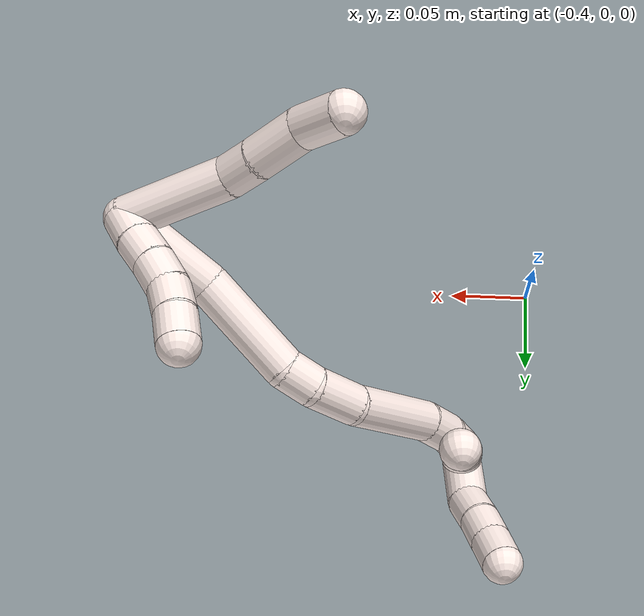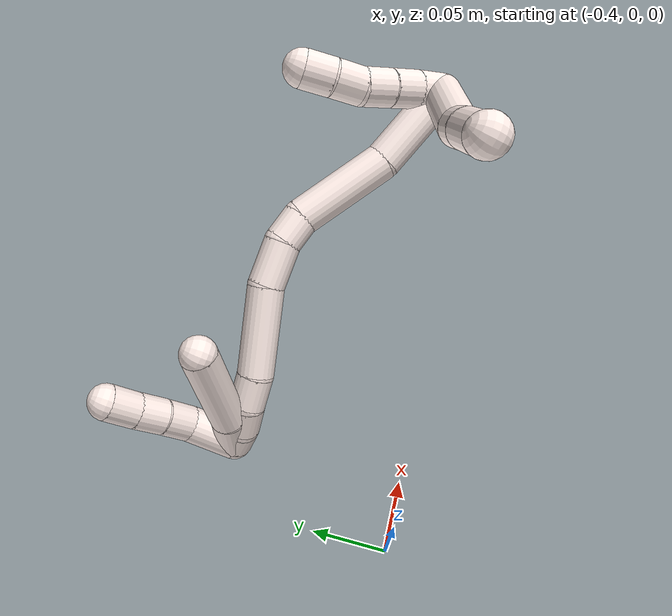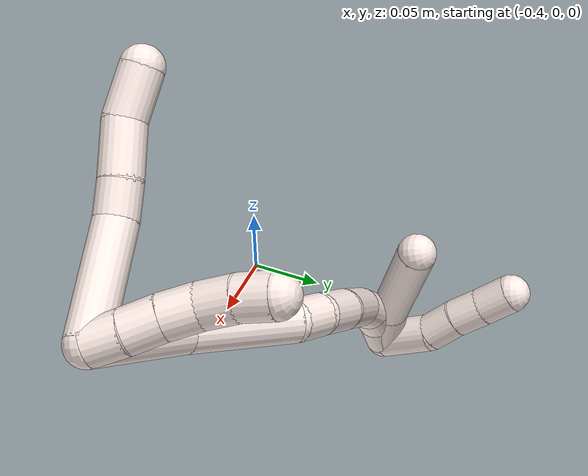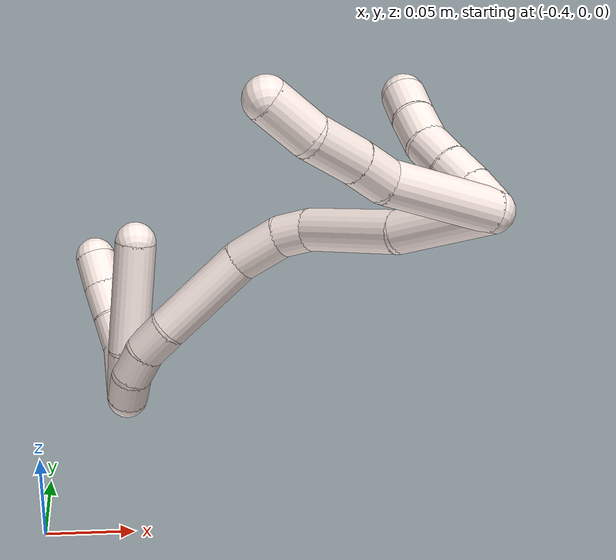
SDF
<sdf version="1.7">
 <world name="default">
  <model name="11">
   <static>0</static>
   <link name="11">
    <collision name="collision-cylinder-e_1_2_8">
     <pose>-0.003226 -0.03327 -0.000795 1.59469 -0.096636 -0.098969</pose>
     <geometry><cylinder><radius>0.0125</radius><length>0.066872</length></cylinder></geometry>
     <surface>
      <friction><ode><mu>1.16</mu><mu2>1.16</mu2><slip1>0</slip1><slip2>0</slip2></ode></friction>
      <contact><ode><kp>1e+06</kp><kd>1</kd><max_vel>0</max_vel><min_depth>0.001</min_depth></ode></contact>
     </surface>
    </collision>
    <visual name="visual-cylinder-e_1_2_8">
     <pose>-0.003226 -0.03327 -0.000795 1.59469 -0.096636 -0.098969</pose>
     <geometry><cylinder><radius>0.0125</radius><length>0.066872</length></cylinder></geometry>
     <material><ambient>1 0.933333 0.909804 1</ambient></material>
    </visual>
    <collision name="collision-cylinder-e_2_8_9">
     <pose>-0.010274 -0.076335 -0.002981 1.71186 -0.368709 -0.423213</pose>
     <geometry><cylinder><radius>0.0125</radius><length>0.021209</length></cylinder></geometry>
     <surface>
      <friction><ode><mu>1.16</mu><mu2>1.16</mu2><slip1>0</slip1><slip2>0</slip2></ode></friction>
      <contact><ode><kp>1e+06</kp><kd>1</kd><max_vel>0</max_vel><min_depth>0.001</min_depth></ode></contact>
     </surface>
    </collision>
    <visual name="visual-cylinder-e_2_8_9">
     <pose>-0.010274 -0.076335 -0.002981 1.71186 -0.368709 -0.423213</pose>
     <geometry><cylinder><radius>0.0125</radius><length>0.021209</length></cylinder></geometry>
     <material><ambient>1 0.933333 0.909804 1</ambient></material>
    </visual>
    <collision name="collision-cylinder-e_3_9_10">
     <pose>-0.019599 -0.101279 -0.005099 1.61877 -0.348029 -0.364769</pose>
     <geometry><cylinder><radius>0.0125</radius><length>0.032271</length></cylinder></geometry>
     <surface>
      <friction><ode><mu>1.16</mu><mu2>1.16</mu2><slip1>0</slip1><slip2>0</slip2></ode></friction>
      <contact><ode><kp>1e+06</kp><kd>1</kd><max_vel>0</max_vel><min_depth>0.001</min_depth></ode></contact>
     </surface>
    </collision>
    <visual name="visual-cylinder-e_3_9_10">
     <pose>-0.019599 -0.101279 -0.005099 1.61877 -0.348029 -0.364769</pose>
     <geometry><cylinder><radius>0.0125</radius><length>0.032271</length></cylinder></geometry>
     <material><ambient>1 0.933333 0.909804 1</ambient></material>
    </visual>
    <collision name="collision-cylinder-e_4_10_6">
     <pose>-0.029574 -0.129551 -0.011078 1.95148 -0.306457 -0.44863</pose>
     <geometry><cylinder><radius>0.0125</radius><length>0.029648</length></cylinder></geometry>
     <surface>
      <friction><ode><mu>1.16</mu><mu2>1.16</mu2><slip1>0</slip1><slip2>0</slip2></ode></friction>
      <contact><ode><kp>1e+06</kp><kd>1</kd><max_vel>0</max_vel><min_depth>0.001</min_depth></ode></contact>
     </surface>
    </collision>
    <visual name="visual-cylinder-e_4_10_6">
     <pose>-0.029574 -0.129551 -0.011078 1.95148 -0.306457 -0.44863</pose>
     <geometry><cylinder><radius>0.0125</radius><length>0.029648</length></cylinder></geometry>
     <material><ambient>1 0.933333 0.909804 1</ambient></material>
    </visual>
    <collision name="collision-cylinder-e_1_2_11">
     <pose>0.001965 -0.00351 -0.009155 2.77546 0.197747 0.983739</pose>
     <geometry><cylinder><radius>0.0125</radius><length>0.02</length></cylinder></geometry>
     <surface>
      <friction><ode><mu>1.16</mu><mu2>1.16</mu2><slip1>0</slip1><slip2>0</slip2></ode></friction>
      <contact><ode><kp>1e+06</kp><kd>1</kd><max_vel>0</max_vel><min_depth>0.001</min_depth></ode></contact>
     </surface>
    </collision>
    <visual name="visual-cylinder-e_1_2_11">
     <pose>0.001965 -0.00351 -0.009155 2.77546 0.197747 0.983739</pose>
     <geometry><cylinder><radius>0.0125</radius><length>0.02</length></cylinder></geometry>
     <material><ambient>1 0.933333 0.909804 1</ambient></material>
    </visual>
    <collision name="collision-cylinder-e_2_11_12">
     <pose>0.006089 -0.011289 -0.027092 2.68921 0.217683 0.886633</pose>
     <geometry><cylinder><radius>0.0125</radius><length>0.02</length></cylinder></geometry>
     <surface>
      <friction><ode><mu>1.16</mu><mu2>1.16</mu2><slip1>0</slip1><slip2>0</slip2></ode></friction>
      <contact><ode><kp>1e+06</kp><kd>1</kd><max_vel>0</max_vel><min_depth>0.001</min_depth></ode></contact>
     </surface>
    </collision>
    <visual name="visual-cylinder-e_2_11_12">
     <pose>0.006089 -0.011289 -0.027092 2.68921 0.217683 0.886633</pose>
     <geometry><cylinder><radius>0.0125</radius><length>0.02</length></cylinder></geometry>
     <material><ambient>1 0.933333 0.909804 1</ambient></material>
    </visual>
    <collision name="collision-cylinder-e_3_12_13">
     <pose>0.010762 -0.019182 -0.044848 2.75767 0.254082 1.16283</pose>
     <geometry><cylinder><radius>0.0125</radius><length>0.02</length></cylinder></geometry>
     <surface>
      <friction><ode><mu>1.16</mu><mu2>1.16</mu2><slip1>0</slip1><slip2>0</slip2></ode></friction>
      <contact><ode><kp>1e+06</kp><kd>1</kd><max_vel>0</max_vel><min_depth>0.001</min_depth></ode></contact>
     </surface>
    </collision>
    <visual name="visual-cylinder-e_3_12_13">
     <pose>0.010762 -0.019182 -0.044848 2.75767 0.254082 1.16283</pose>
     <geometry><cylinder><radius>0.0125</radius><length>0.02</length></cylinder></geometry>
     <material><ambient>1 0.933333 0.909804 1</ambient></material>
    </visual>
    <collision name="collision-cylinder-e_4_13_14">
     <pose>0.014318 -0.024528 -0.063618 2.96773 0.104459 1.08062</pose>
     <geometry><cylinder><radius>0.0125</radius><length>0.02</length></cylinder></geometry>
     <surface>
      <friction><ode><mu>1.16</mu><mu2>1.16</mu2><slip1>0</slip1><slip2>0</slip2></ode></friction>
      <contact><ode><kp>1e+06</kp><kd>1</kd><max_vel>0</max_vel><min_depth>0.001</min_depth></ode></contact>
     </surface>
    </collision>
    <visual name="visual-cylinder-e_4_13_14">
     <pose>0.014318 -0.024528 -0.063618 2.96773 0.104459 1.08062</pose>
     <geometry><cylinder><radius>0.0125</radius><length>0.02</length></cylinder></geometry>
     <material><ambient>1 0.933333 0.909804 1</ambient></material>
    </visual>
    <collision name="collision-cylinder-e_5_14_5">
     <pose>0.017029 -0.026765 -0.08326 3.08913 0.167603 2.53604</pose>
     <geometry><cylinder><radius>0.0125</radius><length>0.02</length></cylinder></geometry>
     <surface>
      <friction><ode><mu>1.16</mu><mu2>1.16</mu2><slip1>0</slip1><slip2>0</slip2></ode></friction>
      <contact><ode><kp>1e+06</kp><kd>1</kd><max_vel>0</max_vel><min_depth>0.001</min_depth></ode></contact>
     </surface>
    </collision>
    <visual name="visual-cylinder-e_5_14_5">
     <pose>0.017029 -0.026765 -0.08326 3.08913 0.167603 2.53604</pose>
     <geometry><cylinder><radius>0.0125</radius><length>0.02</length></cylinder></geometry>
     <material><ambient>1 0.933333 0.909804 1</ambient></material>
    </visual>
    <collision name="collision-cylinder-e_1_2_15">
     <pose>0.024559 -0.014756 -0.00892 2.1145 0.958676 1.48917</pose>
     <geometry><cylinder><radius>0.0125</radius><length>0.060015</length></cylinder></geometry>
     <surface>
      <friction><ode><mu>1.16</mu><mu2>1.16</mu2><slip1>0</slip1><slip2>0</slip2></ode></friction>
      <contact><ode><kp>1e+06</kp><kd>1</kd><max_vel>0</max_vel><min_depth>0.001</min_depth></ode></contact>
     </surface>
    </collision>
    <visual name="visual-cylinder-e_1_2_15">
     <pose>0.024559 -0.014756 -0.00892 2.1145 0.958676 1.48917</pose>
     <geometry><cylinder><radius>0.0125</radius><length>0.060015</length></cylinder></geometry>
     <material><ambient>1 0.933333 0.909804 1</ambient></material>
    </visual>
    <collision name="collision-cylinder-e_2_15_16">
     <pose>0.073351 -0.043028 -0.034893 2.47141 0.839092 1.81584</pose>
     <geometry><cylinder><radius>0.0125</radius><length>0.065139</length></cylinder></geometry>
     <surface>
      <friction><ode><mu>1.16</mu><mu2>1.16</mu2><slip1>0</slip1><slip2>0</slip2></ode></friction>
      <contact><ode><kp>1e+06</kp><kd>1</kd><max_vel>0</max_vel><min_depth>0.001</min_depth></ode></contact>
     </surface>
    </collision>
    <visual name="visual-cylinder-e_2_15_16">
     <pose>0.073351 -0.043028 -0.034893 2.47141 0.839092 1.81584</pose>
     <geometry><cylinder><radius>0.0125</radius><length>0.065139</length></cylinder></geometry>
     <material><ambient>1 0.933333 0.909804 1</ambient></material>
    </visual>
    <collision name="collision-cylinder-e_3_16_17">
     <pose>0.1056 -0.062317 -0.054446 1.97928 0.905531 1.27497</pose>
     <geometry><cylinder><radius>0.0125</radius><length>0.020379</length></cylinder></geometry>
     <surface>
      <friction><ode><mu>1.16</mu><mu2>1.16</mu2><slip1>0</slip1><slip2>0</slip2></ode></friction>
      <contact><ode><kp>1e+06</kp><kd>1</kd><max_vel>0</max_vel><min_depth>0.001</min_depth></ode></contact>
     </surface>
    </collision>
    <visual name="visual-cylinder-e_3_16_17">
     <pose>0.1056 -0.062317 -0.054446 1.97928 0.905531 1.27497</pose>
     <geometry><cylinder><radius>0.0125</radius><length>0.020379</length></cylinder></geometry>
     <material><ambient>1 0.933333 0.909804 1</ambient></material>
    </visual>
    <collision name="collision-cylinder-e_4_17_18">
     <pose>0.12651 -0.076178 -0.056141 1.47181 1.00828 0.926677</pose>
     <geometry><cylinder><radius>0.0125</radius><length>0.030483</length></cylinder></geometry>
     <surface>
      <friction><ode><mu>1.16</mu><mu2>1.16</mu2><slip1>0</slip1><slip2>0</slip2></ode></friction>
      <contact><ode><kp>1e+06</kp><kd>1</kd><max_vel>0</max_vel><min_depth>0.001</min_depth></ode></contact>
     </surface>
    </collision>
    <visual name="visual-cylinder-e_4_17_18">
     <pose>0.12651 -0.076178 -0.056141 1.47181 1.00828 0.926677</pose>
     <geometry><cylinder><radius>0.0125</radius><length>0.030483</length></cylinder></geometry>
     <material><ambient>1 0.933333 0.909804 1</ambient></material>
    </visual>
    <collision name="collision-cylinder-e_5_18_19">
     <pose>0.164484 -0.098709 -0.046126 1.00303 0.971572 0.563557</pose>
     <geometry><cylinder><radius>0.0125</radius><length>0.060745</length></cylinder></geometry>
     <surface>
      <friction><ode><mu>1.16</mu><mu2>1.16</mu2><slip1>0</slip1><slip2>0</slip2></ode></friction>
      <contact><ode><kp>1e+06</kp><kd>1</kd><max_vel>0</max_vel><min_depth>0.001</min_depth></ode></contact>
     </surface>
    </collision>
    <visual name="visual-cylinder-e_5_18_19">
     <pose>0.164484 -0.098709 -0.046126 1.00303 0.971572 0.563557</pose>
     <geometry><cylinder><radius>0.0125</radius><length>0.060745</length></cylinder></geometry>
     <material><ambient>1 0.933333 0.909804 1</ambient></material>
    </visual>
    <collision name="collision-cylinder-e_6_19_20">
     <pose>0.199943 -0.117229 -0.034861 1.10426 1.15641 0.764515</pose>
     <geometry><cylinder><radius>0.0125</radius><length>0.022676</length></cylinder></geometry>
     <surface>
      <friction><ode><mu>1.16</mu><mu2>1.16</mu2><slip1>0</slip1><slip2>0</slip2></ode></friction>
      <contact><ode><kp>1e+06</kp><kd>1</kd><max_vel>0</max_vel><min_depth>0.001</min_depth></ode></contact>
     </surface>
    </collision>
    <visual name="visual-cylinder-e_6_19_20">
     <pose>0.199943 -0.117229 -0.034861 1.10426 1.15641 0.764515</pose>
     <geometry><cylinder><radius>0.0125</radius><length>0.022676</length></cylinder></geometry>
     <material><ambient>1 0.933333 0.909804 1</ambient></material>
    </visual>
    <collision name="collision-cylinder-e_7_20_21">
     <pose>0.22015 -0.122478 -0.030158 0.416408 1.28409 0.31335</pose>
     <geometry><cylinder><radius>0.0125</radius><length>0.020495</length></cylinder></geometry>
     <surface>
      <friction><ode><mu>1.16</mu><mu2>1.16</mu2><slip1>0</slip1><slip2>0</slip2></ode></friction>
      <contact><ode><kp>1e+06</kp><kd>1</kd><max_vel>0</max_vel><min_depth>0.001</min_depth></ode></contact>
     </surface>
    </collision>
    <visual name="visual-cylinder-e_7_20_21">
     <pose>0.22015 -0.122478 -0.030158 0.416408 1.28409 0.31335</pose>
     <geometry><cylinder><radius>0.0125</radius><length>0.020495</length></cylinder></geometry>
     <material><ambient>1 0.933333 0.909804 1</ambient></material>
    </visual>
    <collision name="collision-cylinder-e_8_21_1">
     <pose>0.239728 -0.121848 -0.025954 -0.859169 1.33139 -0.690665</pose>
     <geometry><cylinder><radius>0.0125</radius><length>0.020069</length></cylinder></geometry>
     <surface>
      <friction><ode><mu>1.16</mu><mu2>1.16</mu2><slip1>0</slip1><slip2>0</slip2></ode></friction>
      <contact><ode><kp>1e+06</kp><kd>1</kd><max_vel>0</max_vel><min_depth>0.001</min_depth></ode></contact>
     </surface>
    </collision>
    <visual name="visual-cylinder-e_8_21_1">
     <pose>0.239728 -0.121848 -0.025954 -0.859169 1.33139 -0.690665</pose>
     <geometry><cylinder><radius>0.0125</radius><length>0.020069</length></cylinder></geometry>
     <material><ambient>1 0.933333 0.909804 1</ambient></material>
    </visual>
    <collision name="collision-cylinder-e_1_1_22">
     <pose>0.248471 -0.120446 -0.042287 3.11925 -0.056084 -2.3834</pose>
     <geometry><cylinder><radius>0.0125</radius><length>0.03584</length></cylinder></geometry>
     <surface>
      <friction><ode><mu>1.16</mu><mu2>1.16</mu2><slip1>0</slip1><slip2>0</slip2></ode></friction>
      <contact><ode><kp>1e+06</kp><kd>1</kd><max_vel>0</max_vel><min_depth>0.001</min_depth></ode></contact>
     </surface>
    </collision>
    <visual name="visual-cylinder-e_1_1_22">
     <pose>0.248471 -0.120446 -0.042287 3.11925 -0.056084 -2.3834</pose>
     <geometry><cylinder><radius>0.0125</radius><length>0.03584</length></cylinder></geometry>
     <material><ambient>1 0.933333 0.909804 1</ambient></material>
    </visual>
    <collision name="collision-cylinder-e_2_22_23">
     <pose>0.245085 -0.124314 -0.070301 2.81168 -0.218948 -1.16711</pose>
     <geometry><cylinder><radius>0.0125</radius><length>0.021931</length></cylinder></geometry>
     <surface>
      <friction><ode><mu>1.16</mu><mu2>1.16</mu2><slip1>0</slip1><slip2>0</slip2></ode></friction>
      <contact><ode><kp>1e+06</kp><kd>1</kd><max_vel>0</max_vel><min_depth>0.001</min_depth></ode></contact>
     </surface>
    </collision>
    <visual name="visual-cylinder-e_2_22_23">
     <pose>0.245085 -0.124314 -0.070301 2.81168 -0.218948 -1.16711</pose>
     <geometry><cylinder><radius>0.0125</radius><length>0.021931</length></cylinder></geometry>
     <material><ambient>1 0.933333 0.909804 1</ambient></material>
    </visual>
    <collision name="collision-cylinder-e_3_23_24">
     <pose>0.241463 -0.130569 -0.090249 2.86503 -0.120848 -0.82011</pose>
     <geometry><cylinder><radius>0.0125</radius><length>0.020569</length></cylinder></geometry>
     <surface>
      <friction><ode><mu>1.16</mu><mu2>1.16</mu2><slip1>0</slip1><slip2>0</slip2></ode></friction>
      <contact><ode><kp>1e+06</kp><kd>1</kd><max_vel>0</max_vel><min_depth>0.001</min_depth></ode></contact>
     </surface>
    </collision>
    <visual name="visual-cylinder-e_3_23_24">
     <pose>0.241463 -0.130569 -0.090249 2.86503 -0.120848 -0.82011</pose>
     <geometry><cylinder><radius>0.0125</radius><length>0.020569</length></cylinder></geometry>
     <material><ambient>1 0.933333 0.909804 1</ambient></material>
    </visual>
    <collision name="collision-cylinder-e_4_24_4">
     <pose>0.238317 -0.136143 -0.110361 2.87712 -0.176982 -1.17651</pose>
     <geometry><cylinder><radius>0.0125</radius><length>0.02166</length></cylinder></geometry>
     <surface>
      <friction><ode><mu>1.16</mu><mu2>1.16</mu2><slip1>0</slip1><slip2>0</slip2></ode></friction>
      <contact><ode><kp>1e+06</kp><kd>1</kd><max_vel>0</max_vel><min_depth>0.001</min_depth></ode></contact>
     </surface>
    </collision>
    <visual name="visual-cylinder-e_4_24_4">
     <pose>0.238317 -0.136143 -0.110361 2.87712 -0.176982 -1.17651</pose>
     <geometry><cylinder><radius>0.0125</radius><length>0.02166</length></cylinder></geometry>
     <material><ambient>1 0.933333 0.909804 1</ambient></material>
    </visual>
    <collision name="collision-cylinder-e_1_1_25">
     <pose>0.236074 -0.123548 -0.032344 2.72643 -0.995971 -2.40243</pose>
     <geometry><cylinder><radius>0.0125</radius><length>0.031937</length></cylinder></geometry>
     <surface>
      <friction><ode><mu>1.16</mu><mu2>1.16</mu2><slip1>0</slip1><slip2>0</slip2></ode></friction>
      <contact><ode><kp>1e+06</kp><kd>1</kd><max_vel>0</max_vel><min_depth>0.001</min_depth></ode></contact>
     </surface>
    </collision>
    <visual name="visual-cylinder-e_1_1_25">
     <pose>0.236074 -0.123548 -0.032344 2.72643 -0.995971 -2.40243</pose>
     <geometry><cylinder><radius>0.0125</radius><length>0.031937</length></cylinder></geometry>
     <material><ambient>1 0.933333 0.909804 1</ambient></material>
    </visual>
    <collision name="collision-cylinder-e_2_25_3">
     <pose>0.196621 -0.131942 -0.061632 2.91627 -0.871813 -2.66502</pose>
     <geometry><cylinder><radius>0.0125</radius><length>0.068063</length></cylinder></geometry>
     <surface>
      <friction><ode><mu>1.16</mu><mu2>1.16</mu2><slip1>0</slip1><slip2>0</slip2></ode></friction>
      <contact><ode><kp>1e+06</kp><kd>1</kd><max_vel>0</max_vel><min_depth>0.001</min_depth></ode></contact>
     </surface>
    </collision>
    <visual name="visual-cylinder-e_2_25_3">
     <pose>0.196621 -0.131942 -0.061632 2.91627 -0.871813 -2.66502</pose>
     <geometry><cylinder><radius>0.0125</radius><length>0.068063</length></cylinder></geometry>
     <material><ambient>1 0.933333 0.909804 1</ambient></material>
    </visual>
    <collision name="collision-sphere-3">
     <pose>0.170569 -0.136834 -0.082976 0 -0 0</pose>
     <geometry><sphere><radius>0.0125</radius></sphere></geometry>
     <surface>
      <friction><ode><mu>1.16</mu><mu2>1.16</mu2><slip1>0</slip1><slip2>0</slip2></ode></friction>
      <contact><ode><kp>1e+06</kp><kd>1</kd><max_vel>0</max_vel><min_depth>0.001</min_depth></ode></contact>
     </surface>
    </collision>
    <visual name="visual-sphere-3">
     <pose>0.170569 -0.136834 -0.082976 0 -0 0</pose>
     <geometry><sphere><radius>0.0125</radius></sphere></geometry>
     <material><ambient>1 0.933333 0.909804 1</ambient></material>
    </visual>
    <collision name="collision-sphere-25">
     <pose>0.222672 -0.12705 -0.040288 0 -0 0</pose>
     <geometry><sphere><radius>0.0125</radius></sphere></geometry>
     <surface>
      <friction><ode><mu>1.16</mu><mu2>1.16</mu2><slip1>0</slip1><slip2>0</slip2></ode></friction>
      <contact><ode><kp>1e+06</kp><kd>1</kd><max_vel>0</max_vel><min_depth>0.001</min_depth></ode></contact>
     </surface>
    </collision>
    <visual name="visual-sphere-25">
     <pose>0.222672 -0.12705 -0.040288 0 -0 0</pose>
     <geometry><sphere><radius>0.0125</radius></sphere></geometry>
     <material><ambient>1 0.933333 0.909804 1</ambient></material>
    </visual>
    <collision name="collision-sphere-4">
     <pose>0.23641 -0.13893 -0.120651 0 -0 0</pose>
     <geometry><sphere><radius>0.0125</radius></sphere></geometry>
     <surface>
      <friction><ode><mu>1.16</mu><mu2>1.16</mu2><slip1>0</slip1><slip2>0</slip2></ode></friction>
      <contact><ode><kp>1e+06</kp><kd>1</kd><max_vel>0</max_vel><min_depth>0.001</min_depth></ode></contact>
     </surface>
    </collision>
    <visual name="visual-sphere-4">
     <pose>0.23641 -0.13893 -0.120651 0 -0 0</pose>
     <geometry><sphere><radius>0.0125</radius></sphere></geometry>
     <material><ambient>1 0.933333 0.909804 1</ambient></material>
    </visual>
    <collision name="collision-sphere-24">
     <pose>0.240224 -0.133357 -0.10007 0 -0 0</pose>
     <geometry><sphere><radius>0.0125</radius></sphere></geometry>
     <surface>
      <friction><ode><mu>1.16</mu><mu2>1.16</mu2><slip1>0</slip1><slip2>0</slip2></ode></friction>
      <contact><ode><kp>1e+06</kp><kd>1</kd><max_vel>0</max_vel><min_depth>0.001</min_depth></ode></contact>
     </surface>
    </collision>
    <visual name="visual-sphere-24">
     <pose>0.240224 -0.133357 -0.10007 0 -0 0</pose>
     <geometry><sphere><radius>0.0125</radius></sphere></geometry>
     <material><ambient>1 0.933333 0.909804 1</ambient></material>
    </visual>
    <collision name="collision-sphere-23">
     <pose>0.242703 -0.127781 -0.080427 0 -0 0</pose>
     <geometry><sphere><radius>0.0125</radius></sphere></geometry>
     <surface>
      <friction><ode><mu>1.16</mu><mu2>1.16</mu2><slip1>0</slip1><slip2>0</slip2></ode></friction>
      <contact><ode><kp>1e+06</kp><kd>1</kd><max_vel>0</max_vel><min_depth>0.001</min_depth></ode></contact>
     </surface>
    </collision>
    <visual name="visual-sphere-23">
     <pose>0.242703 -0.127781 -0.080427 0 -0 0</pose>
     <geometry><sphere><radius>0.0125</radius></sphere></geometry>
     <material><ambient>1 0.933333 0.909804 1</ambient></material>
    </visual>
    <collision name="collision-sphere-22">
     <pose>0.247467 -0.120846 -0.060174 0 -0 0</pose>
     <geometry><sphere><radius>0.0125</radius></sphere></geometry>
     <surface>
      <friction><ode><mu>1.16</mu><mu2>1.16</mu2><slip1>0</slip1><slip2>0</slip2></ode></friction>
      <contact><ode><kp>1e+06</kp><kd>1</kd><max_vel>0</max_vel><min_depth>0.001</min_depth></ode></contact>
     </surface>
    </collision>
    <visual name="visual-sphere-22">
     <pose>0.247467 -0.120846 -0.060174 0 -0 0</pose>
     <geometry><sphere><radius>0.0125</radius></sphere></geometry>
     <material><ambient>1 0.933333 0.909804 1</ambient></material>
    </visual>
    <collision name="collision-sphere-1">
     <pose>0.249476 -0.120046 -0.0244 0 -0 0</pose>
     <geometry><sphere><radius>0.0125</radius></sphere></geometry>
     <surface>
      <friction><ode><mu>1.16</mu><mu2>1.16</mu2><slip1>0</slip1><slip2>0</slip2></ode></friction>
      <contact><ode><kp>1e+06</kp><kd>1</kd><max_vel>0</max_vel><min_depth>0.001</min_depth></ode></contact>
     </surface>
    </collision>
    <visual name="visual-sphere-1">
     <pose>0.249476 -0.120046 -0.0244 0 -0 0</pose>
     <geometry><sphere><radius>0.0125</radius></sphere></geometry>
     <material><ambient>1 0.933333 0.909804 1</ambient></material>
    </visual>
    <collision name="collision-sphere-21">
     <pose>0.229979 -0.12365 -0.027508 0 -0 0</pose>
     <geometry><sphere><radius>0.0125</radius></sphere></geometry>
     <surface>
      <friction><ode><mu>1.16</mu><mu2>1.16</mu2><slip1>0</slip1><slip2>0</slip2></ode></friction>
      <contact><ode><kp>1e+06</kp><kd>1</kd><max_vel>0</max_vel><min_depth>0.001</min_depth></ode></contact>
     </surface>
    </collision>
    <visual name="visual-sphere-21">
     <pose>0.229979 -0.12365 -0.027508 0 -0 0</pose>
     <geometry><sphere><radius>0.0125</radius></sphere></geometry>
     <material><ambient>1 0.933333 0.909804 1</ambient></material>
    </visual>
    <collision name="collision-sphere-11">
     <pose>0.003929 -0.007021 -0.01831 0 -0 0</pose>
     <geometry><sphere><radius>0.0125</radius></sphere></geometry>
     <surface>
      <friction><ode><mu>1.16</mu><mu2>1.16</mu2><slip1>0</slip1><slip2>0</slip2></ode></friction>
      <contact><ode><kp>1e+06</kp><kd>1</kd><max_vel>0</max_vel><min_depth>0.001</min_depth></ode></contact>
     </surface>
    </collision>
    <visual name="visual-sphere-11">
     <pose>0.003929 -0.007021 -0.01831 0 -0 0</pose>
     <geometry><sphere><radius>0.0125</radius></sphere></geometry>
     <material><ambient>1 0.933333 0.909804 1</ambient></material>
    </visual>
    <collision name="collision-sphere-6">
     <pose>-0.034046 -0.142673 -0.016329 0 -0 0</pose>
     <geometry><sphere><radius>0.0125</radius></sphere></geometry>
     <surface>
      <friction><ode><mu>1.16</mu><mu2>1.16</mu2><slip1>0</slip1><slip2>0</slip2></ode></friction>
      <contact><ode><kp>1e+06</kp><kd>1</kd><max_vel>0</max_vel><min_depth>0.001</min_depth></ode></contact>
     </surface>
    </collision>
    <visual name="visual-sphere-6">
     <pose>-0.034046 -0.142673 -0.016329 0 -0 0</pose>
     <geometry><sphere><radius>0.0125</radius></sphere></geometry>
     <material><ambient>1 0.933333 0.909804 1</ambient></material>
    </visual>
    <collision name="collision-sphere-10">
     <pose>-0.025102 -0.116429 -0.005826 0 -0 0</pose>
     <geometry><sphere><radius>0.0125</radius></sphere></geometry>
     <surface>
      <friction><ode><mu>1.16</mu><mu2>1.16</mu2><slip1>0</slip1><slip2>0</slip2></ode></friction>
      <contact><ode><kp>1e+06</kp><kd>1</kd><max_vel>0</max_vel><min_depth>0.001</min_depth></ode></contact>
     </surface>
    </collision>
    <visual name="visual-sphere-10">
     <pose>-0.025102 -0.116429 -0.005826 0 -0 0</pose>
     <geometry><sphere><radius>0.0125</radius></sphere></geometry>
     <material><ambient>1 0.933333 0.909804 1</ambient></material>
    </visual>
    <collision name="collision-sphere-9">
     <pose>-0.014096 -0.086128 -0.004372 0 -0 0</pose>
     <geometry><sphere><radius>0.0125</radius></sphere></geometry>
     <surface>
      <friction><ode><mu>1.16</mu><mu2>1.16</mu2><slip1>0</slip1><slip2>0</slip2></ode></friction>
      <contact><ode><kp>1e+06</kp><kd>1</kd><max_vel>0</max_vel><min_depth>0.001</min_depth></ode></contact>
     </surface>
    </collision>
    <visual name="visual-sphere-9">
     <pose>-0.014096 -0.086128 -0.004372 0 -0 0</pose>
     <geometry><sphere><radius>0.0125</radius></sphere></geometry>
     <material><ambient>1 0.933333 0.909804 1</ambient></material>
    </visual>
    <collision name="collision-sphere-2">
     <geometry><sphere><radius>0.0125</radius></sphere></geometry>
     <surface>
      <friction><ode><mu>1.16</mu><mu2>1.16</mu2><slip1>0</slip1><slip2>0</slip2></ode></friction>
      <contact><ode><kp>1e+06</kp><kd>1</kd><max_vel>0</max_vel><min_depth>0.001</min_depth></ode></contact>
     </surface>
    </collision>
    <visual name="visual-sphere-2">
     <geometry><sphere><radius>0.0125</radius></sphere></geometry>
     <material><ambient>1 0.933333 0.909804 1</ambient></material>
    </visual>
    <collision name="collision-sphere-19">
     <pose>0.189565 -0.113152 -0.036915 0 -0 0</pose>
     <geometry><sphere><radius>0.0125</radius></sphere></geometry>
     <surface>
      <friction><ode><mu>1.16</mu><mu2>1.16</mu2><slip1>0</slip1><slip2>0</slip2></ode></friction>
      <contact><ode><kp>1e+06</kp><kd>1</kd><max_vel>0</max_vel><min_depth>0.001</min_depth></ode></contact>
     </surface>
    </collision>
    <visual name="visual-sphere-19">
     <pose>0.189565 -0.113152 -0.036915 0 -0 0</pose>
     <geometry><sphere><radius>0.0125</radius></sphere></geometry>
     <material><ambient>1 0.933333 0.909804 1</ambient></material>
    </visual>
    <collision name="collision-sphere-8">
     <pose>-0.006452 -0.066541 -0.00159 0 -0 0</pose>
     <geometry><sphere><radius>0.0125</radius></sphere></geometry>
     <surface>
      <friction><ode><mu>1.16</mu><mu2>1.16</mu2><slip1>0</slip1><slip2>0</slip2></ode></friction>
      <contact><ode><kp>1e+06</kp><kd>1</kd><max_vel>0</max_vel><min_depth>0.001</min_depth></ode></contact>
     </surface>
    </collision>
    <visual name="visual-sphere-8">
     <pose>-0.006452 -0.066541 -0.00159 0 -0 0</pose>
     <geometry><sphere><radius>0.0125</radius></sphere></geometry>
     <material><ambient>1 0.933333 0.909804 1</ambient></material>
    </visual>
    <collision name="collision-sphere-12">
     <pose>0.008249 -0.015556 -0.035874 0 -0 0</pose>
     <geometry><sphere><radius>0.0125</radius></sphere></geometry>
     <surface>
      <friction><ode><mu>1.16</mu><mu2>1.16</mu2><slip1>0</slip1><slip2>0</slip2></ode></friction>
      <contact><ode><kp>1e+06</kp><kd>1</kd><max_vel>0</max_vel><min_depth>0.001</min_depth></ode></contact>
     </surface>
    </collision>
    <visual name="visual-sphere-12">
     <pose>0.008249 -0.015556 -0.035874 0 -0 0</pose>
     <geometry><sphere><radius>0.0125</radius></sphere></geometry>
     <material><ambient>1 0.933333 0.909804 1</ambient></material>
    </visual>
    <collision name="collision-sphere-13">
     <pose>0.013276 -0.022807 -0.053823 0 -0 0</pose>
     <geometry><sphere><radius>0.0125</radius></sphere></geometry>
     <surface>
      <friction><ode><mu>1.16</mu><mu2>1.16</mu2><slip1>0</slip1><slip2>0</slip2></ode></friction>
      <contact><ode><kp>1e+06</kp><kd>1</kd><max_vel>0</max_vel><min_depth>0.001</min_depth></ode></contact>
     </surface>
    </collision>
    <visual name="visual-sphere-13">
     <pose>0.013276 -0.022807 -0.053823 0 -0 0</pose>
     <geometry><sphere><radius>0.0125</radius></sphere></geometry>
     <material><ambient>1 0.933333 0.909804 1</ambient></material>
    </visual>
    <collision name="collision-sphere-14">
     <pose>0.015361 -0.026248 -0.073414 0 -0 0</pose>
     <geometry><sphere><radius>0.0125</radius></sphere></geometry>
     <surface>
      <friction><ode><mu>1.16</mu><mu2>1.16</mu2><slip1>0</slip1><slip2>0</slip2></ode></friction>
      <contact><ode><kp>1e+06</kp><kd>1</kd><max_vel>0</max_vel><min_depth>0.001</min_depth></ode></contact>
     </surface>
    </collision>
    <visual name="visual-sphere-14">
     <pose>0.015361 -0.026248 -0.073414 0 -0 0</pose>
     <geometry><sphere><radius>0.0125</radius></sphere></geometry>
     <material><ambient>1 0.933333 0.909804 1</ambient></material>
    </visual>
    <collision name="collision-sphere-5">
     <pose>0.018697 -0.027282 -0.093107 0 -0 0</pose>
     <geometry><sphere><radius>0.0125</radius></sphere></geometry>
     <surface>
      <friction><ode><mu>1.16</mu><mu2>1.16</mu2><slip1>0</slip1><slip2>0</slip2></ode></friction>
      <contact><ode><kp>1e+06</kp><kd>1</kd><max_vel>0</max_vel><min_depth>0.001</min_depth></ode></contact>
     </surface>
    </collision>
    <visual name="visual-sphere-5">
     <pose>0.018697 -0.027282 -0.093107 0 -0 0</pose>
     <geometry><sphere><radius>0.0125</radius></sphere></geometry>
     <material><ambient>1 0.933333 0.909804 1</ambient></material>
    </visual>
    <collision name="collision-sphere-15">
     <pose>0.049118 -0.029512 -0.017839 0 -0 0</pose>
     <geometry><sphere><radius>0.0125</radius></sphere></geometry>
     <surface>
      <friction><ode><mu>1.16</mu><mu2>1.16</mu2><slip1>0</slip1><slip2>0</slip2></ode></friction>
      <contact><ode><kp>1e+06</kp><kd>1</kd><max_vel>0</max_vel><min_depth>0.001</min_depth></ode></contact>
     </surface>
    </collision>
    <visual name="visual-sphere-15">
     <pose>0.049118 -0.029512 -0.017839 0 -0 0</pose>
     <geometry><sphere><radius>0.0125</radius></sphere></geometry>
     <material><ambient>1 0.933333 0.909804 1</ambient></material>
    </visual>
    <collision name="collision-sphere-16">
     <pose>0.097584 -0.056545 -0.051948 0 -0 0</pose>
     <geometry><sphere><radius>0.0125</radius></sphere></geometry>
     <surface>
      <friction><ode><mu>1.16</mu><mu2>1.16</mu2><slip1>0</slip1><slip2>0</slip2></ode></friction>
      <contact><ode><kp>1e+06</kp><kd>1</kd><max_vel>0</max_vel><min_depth>0.001</min_depth></ode></contact>
     </surface>
    </collision>
    <visual name="visual-sphere-16">
     <pose>0.097584 -0.056545 -0.051948 0 -0 0</pose>
     <geometry><sphere><radius>0.0125</radius></sphere></geometry>
     <material><ambient>1 0.933333 0.909804 1</ambient></material>
    </visual>
    <collision name="collision-sphere-17">
     <pose>0.113617 -0.068089 -0.056944 0 -0 0</pose>
     <geometry><sphere><radius>0.0125</radius></sphere></geometry>
     <surface>
      <friction><ode><mu>1.16</mu><mu2>1.16</mu2><slip1>0</slip1><slip2>0</slip2></ode></friction>
      <contact><ode><kp>1e+06</kp><kd>1</kd><max_vel>0</max_vel><min_depth>0.001</min_depth></ode></contact>
     </surface>
    </collision>
    <visual name="visual-sphere-17">
     <pose>0.113617 -0.068089 -0.056944 0 -0 0</pose>
     <geometry><sphere><radius>0.0125</radius></sphere></geometry>
     <material><ambient>1 0.933333 0.909804 1</ambient></material>
    </visual>
    <collision name="collision-sphere-18">
     <pose>0.139403 -0.084267 -0.055338 0 -0 0</pose>
     <geometry><sphere><radius>0.0125</radius></sphere></geometry>
     <surface>
      <friction><ode><mu>1.16</mu><mu2>1.16</mu2><slip1>0</slip1><slip2>0</slip2></ode></friction>
      <contact><ode><kp>1e+06</kp><kd>1</kd><max_vel>0</max_vel><min_depth>0.001</min_depth></ode></contact>
     </surface>
    </collision>
    <visual name="visual-sphere-18">
     <pose>0.139403 -0.084267 -0.055338 0 -0 0</pose>
     <geometry><sphere><radius>0.0125</radius></sphere></geometry>
     <material><ambient>1 0.933333 0.909804 1</ambient></material>
    </visual>
    <collision name="collision-sphere-20">
     <pose>0.210321 -0.121306 -0.032808 0 -0 0</pose>
     <geometry><sphere><radius>0.0125</radius></sphere></geometry>
     <surface>
      <friction><ode><mu>1.16</mu><mu2>1.16</mu2><slip1>0</slip1><slip2>0</slip2></ode></friction>
      <contact><ode><kp>1e+06</kp><kd>1</kd><max_vel>0</max_vel><min_depth>0.001</min_depth></ode></contact>
     </surface>
    </collision>
    <visual name="visual-sphere-20">
     <pose>0.210321 -0.121306 -0.032808 0 -0 0</pose>
     <geometry><sphere><radius>0.0125</radius></sphere></geometry>
     <material><ambient>1 0.933333 0.909804 1</ambient></material>
    </visual>
    <inertial>
     <pose>0.107333 -0.07887 -0.037415 0 -0 0</pose>
     <mass>0.75</mass>
     <inertia><ixx>5.7e-05</ixx><ixy>0</ixy><ixz>0</ixz><iyy>8e-05</iyy><iyz>0</iyz><izz>2.5e-05</izz></inertia>
    </inertial>
   </link>
   <pose>-0.153509 0.032311 0.181279 -2.51972 1.03322 2.35115</pose>
  </model>
 </world>
</sdf>
